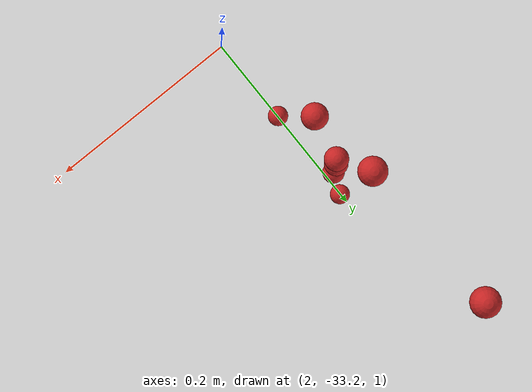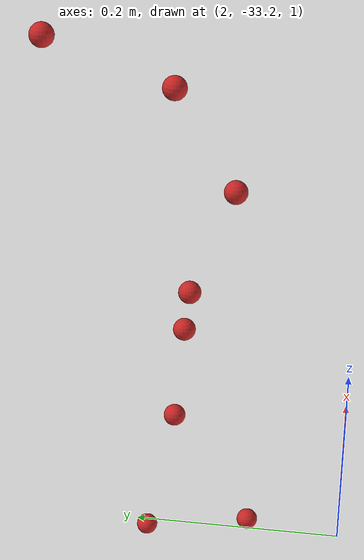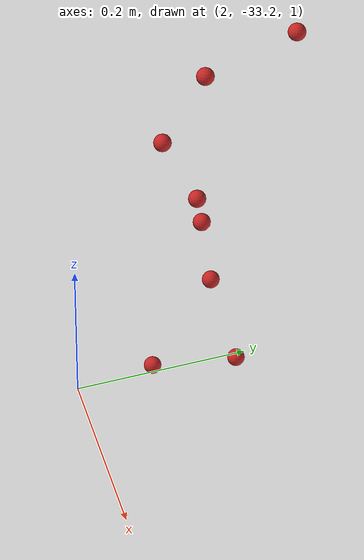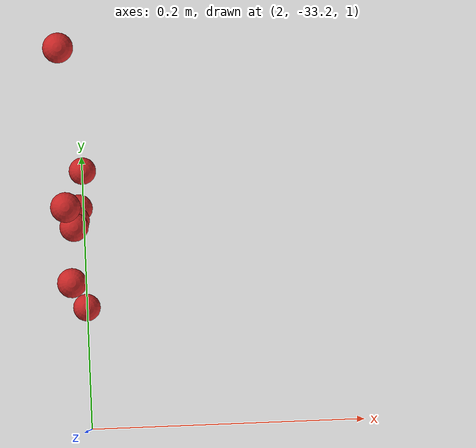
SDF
<sdf version="1.4">
 <world name="default">
  <model name="ground_plane">
   <static>1</static>
   <link name="link">
    <collision name="collision">
     <geometry><plane><normal>0 0 1</normal><size>100 100</size></plane></geometry>
     <surface><friction><ode><mu>100</mu><mu2>50</mu2></ode></friction></surface>
    </collision>
    <visual name="visual">
     <cast_shadows>0</cast_shadows>
     <geometry><plane><normal>0 0 1</normal><size>100 100</size></plane></geometry>
     <material>
      <script><uri>file://media/materials/scripts/gazebo.material</uri><name>Gazebo/Grey</name></script>
     </material>
    </visual>
    <velocity_decay><linear>0</linear><angular>0</angular></velocity_decay>
   </link>
  </model>
  <model name="apple352">
   <link name="my_apple">
    <inertial>
     <pose>2 0 0 0 -0 0</pose>
     <mass>1</mass>
     <inertia><ixx>1</ixx><ixy>0</ixy><ixz>0</ixz><iyy>1</iyy><iyz>0</iyz><izz>1</izz></inertia>
    </inertial>
    <collision name="my_apple_collision">
     <pose>2 0 1 0 -0 0</pose>
     <geometry><sphere><radius>0.01</radius></sphere></geometry>
    </collision>
    <visual name="my_apple_visual">
     <pose>2 0 1 0 -0 0</pose>
     <geometry><sphere><radius>0.01</radius></sphere></geometry>
     <material><script><name>Gazebo/Red</name><uri>__default__</uri></script></material>
    </visual>
    <gravity>0</gravity>
    <velocity_decay><linear>0</linear><angular>0</angular></velocity_decay>
   </link>
   <pose>0 -33.1105 0.012727 0 -0 0</pose>
   <static>0</static>
  </model>
  <model name="apple354">
   <link name="my_apple">
    <inertial>
     <pose>2 0 0 0 -0 0</pose>
     <mass>1</mass>
     <inertia><ixx>1</ixx><ixy>0</ixy><ixz>0</ixz><iyy>1</iyy><iyz>0</iyz><izz>1</izz></inertia>
    </inertial>
    <collision name="my_apple_collision">
     <pose>2 0 1 0 -0 0</pose>
     <geometry><sphere><radius>0.01</radius></sphere></geometry>
    </collision>
    <visual name="my_apple_visual">
     <pose>2 0 1 0 -0 0</pose>
     <geometry><sphere><radius>0.01</radius></sphere></geometry>
     <material><script><name>Gazebo/Red</name><uri>__default__</uri></script></material>
    </visual>
    <gravity>0</gravity>
    <velocity_decay><linear>0</linear><angular>0</angular></velocity_decay>
   </link>
   <pose>0 -33.0518 0.239933 0 -0 0</pose>
   <static>0</static>
  </model>
  <model name="apple355">
   <link name="my_apple">
    <inertial>
     <pose>2 0 0 0 -0 0</pose>
     <mass>1</mass>
     <inertia><ixx>1</ixx><ixy>0</ixy><ixz>0</ixz><iyy>1</iyy><iyz>0</iyz><izz>1</izz></inertia>
    </inertial>
    <collision name="my_apple_collision">
     <pose>2 0 1 0 -0 0</pose>
     <geometry><sphere><radius>0.01</radius></sphere></geometry>
    </collision>
    <visual name="my_apple_visual">
     <pose>2 0 1 0 -0 0</pose>
     <geometry><sphere><radius>0.01</radius></sphere></geometry>
     <material><script><name>Gazebo/Red</name><uri>__default__</uri></script></material>
    </visual>
    <gravity>0</gravity>
    <velocity_decay><linear>0</linear><angular>0</angular></velocity_decay>
   </link>
   <pose>0 -33.0572 0.28026 0 -0 0</pose>
   <static>0</static>
  </model>
  <model name="apple356">
   <link name="my_apple">
    <inertial>
     <pose>2 0 0 0 -0 0</pose>
     <mass>1</mass>
     <inertia><ixx>1</ixx><ixy>0</ixy><ixz>0</ixz><iyy>1</iyy><iyz>0</iyz><izz>1</izz></inertia>
    </inertial>
    <collision name="my_apple_collision">
     <pose>2 0 1 0 -0 0</pose>
     <geometry><sphere><radius>0.01</radius></sphere></geometry>
    </collision>
    <visual name="my_apple_visual">
     <pose>2 0 1 0 -0 0</pose>
     <geometry><sphere><radius>0.01</radius></sphere></geometry>
     <material><script><name>Gazebo/Red</name><uri>__default__</uri></script></material>
    </visual>
    <gravity>0</gravity>
    <velocity_decay><linear>0</linear><angular>0</angular></velocity_decay>
   </link>
   <pose>0 -33.0482 0.472936 0 -0 0</pose>
   <static>0</static>
  </model>
  <model name="apple358">
   <link name="my_apple">
    <inertial>
     <pose>2 0 0 0 -0 0</pose>
     <mass>1</mass>
     <inertia><ixx>1</ixx><ixy>0</ixy><ixz>0</ixz><iyy>1</iyy><iyz>0</iyz><izz>1</izz></inertia>
    </inertial>
    <collision name="my_apple_collision">
     <pose>2 0 1 0 -0 0</pose>
     <geometry><sphere><radius>0.01</radius></sphere></geometry>
    </collision>
    <visual name="my_apple_visual">
     <pose>2 0 1 0 -0 0</pose>
     <geometry><sphere><radius>0.01</radius></sphere></geometry>
     <material><script><name>Gazebo/Red</name><uri>__default__</uri></script></material>
    </visual>
    <gravity>0</gravity>
    <velocity_decay><linear>0</linear><angular>0</angular></velocity_decay>
   </link>
   <pose>0 -32.9452 0.51133 0 -0 0</pose>
   <static>0</static>
  </model>
  <model name="apple366">
   <link name="my_apple">
    <inertial>
     <pose>2 0 0 0 -0 0</pose>
     <mass>1</mass>
     <inertia><ixx>1</ixx><ixy>0</ixy><ixz>0</ixz><iyy>1</iyy><iyz>0</iyz><izz>1</izz></inertia>
    </inertial>
    <collision name="my_apple_collision">
     <pose>2 0 1 0 -0 0</pose>
     <geometry><sphere><radius>0.01</radius></sphere></geometry>
    </collision>
    <visual name="my_apple_visual">
     <pose>2 0 1 0 -0 0</pose>
     <geometry><sphere><radius>0.01</radius></sphere></geometry>
     <material><script><name>Gazebo/Red</name><uri>__default__</uri></script></material>
    </visual>
    <gravity>0</gravity>
    <velocity_decay><linear>0</linear><angular>0</angular></velocity_decay>
   </link>
   <pose>0 -33.0969 0.383057 0 -0 0</pose>
   <static>0</static>
  </model>
  <model name="apple377">
   <link name="my_apple">
    <inertial>
     <pose>2 0 0 0 -0 0</pose>
     <mass>1</mass>
     <inertia><ixx>1</ixx><ixy>0</ixy><ixz>0</ixz><iyy>1</iyy><iyz>0</iyz><izz>1</izz></inertia>
    </inertial>
    <collision name="my_apple_collision">
     <pose>2 0 1 0 -0 0</pose>
     <geometry><sphere><radius>0.01</radius></sphere></geometry>
    </collision>
    <visual name="my_apple_visual">
     <pose>2 0 1 0 -0 0</pose>
     <geometry><sphere><radius>0.01</radius></sphere></geometry>
     <material><script><name>Gazebo/Red</name><uri>__default__</uri></script></material>
    </visual>
    <gravity>0</gravity>
    <velocity_decay><linear>0</linear><angular>0</angular></velocity_decay>
   </link>
   <pose>0 -33.0409 0.139465 0 -0 0</pose>
   <static>0</static>
  </model>
  <model name="apple381">
   <link name="my_apple">
    <inertial>
     <pose>2 0 0 0 -0 0</pose>
     <mass>1</mass>
     <inertia><ixx>1</ixx><ixy>0</ixy><ixz>0</ixz><iyy>1</iyy><iyz>0</iyz><izz>1</izz></inertia>
    </inertial>
    <collision name="my_apple_collision">
     <pose>2 0 1 0 -0 0</pose>
     <geometry><sphere><radius>0.01</radius></sphere></geometry>
    </collision>
    <visual name="my_apple_visual">
     <pose>2 0 1 0 -0 0</pose>
     <geometry><sphere><radius>0.01</radius></sphere></geometry>
     <material><script><name>Gazebo/Red</name><uri>__default__</uri></script></material>
    </visual>
    <gravity>0</gravity>
    <velocity_decay><linear>0</linear><angular>0</angular></velocity_decay>
   </link>
   <pose>0 -33.0098 -0.00722 0 -0 0</pose>
   <static>0</static>
  </model>
 </world>
</sdf>
